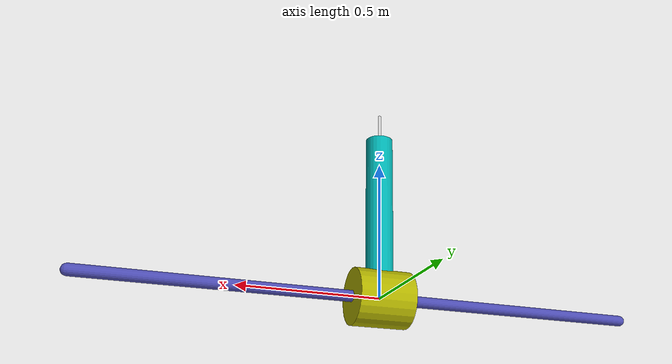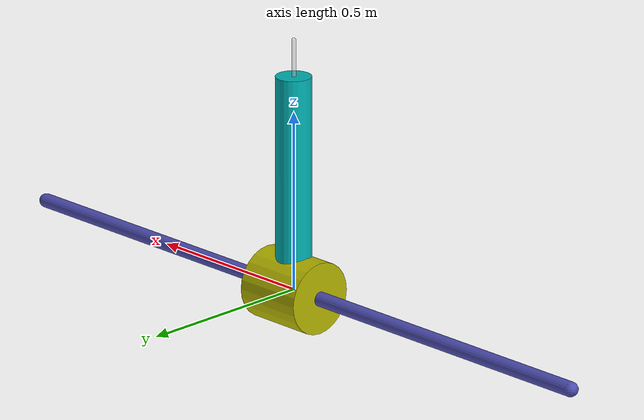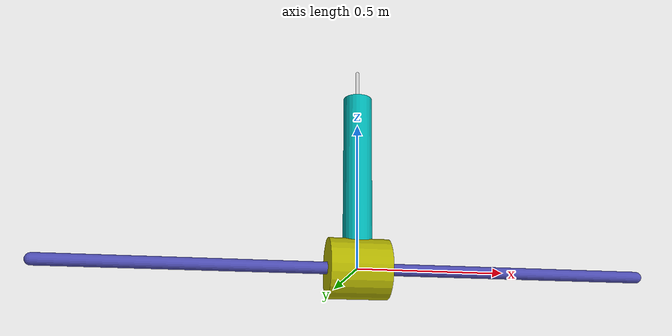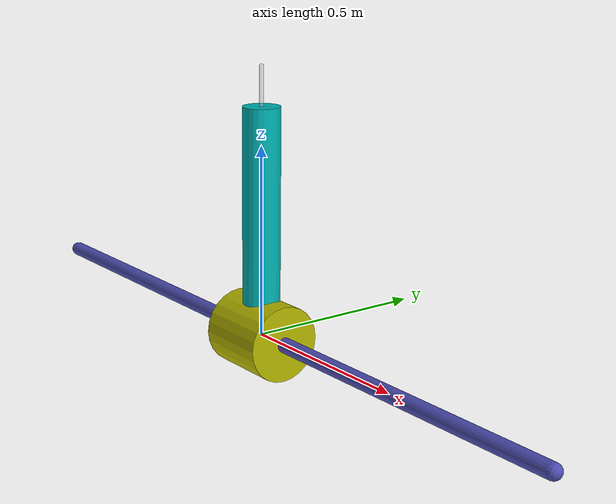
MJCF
<mujoco model="inverted pendulum">
	<compiler inertiafromgeom="true"/>
	<default>
		<joint armature="0" damping="1" limited="true"/>
		<geom contype="0" friction="1 0.1 0.1" rgba="0.7 0.7 0 1"/>
		<tendon/>
		<motor ctrlrange="-3 3"/>
	</default>
	<option gravity="0 0 -9.81" integrator="RK4" timestep="0.02"/>
	<size nstack="3000"/>
	<worldbody>
		<!--geom name="ground" type="plane" pos="0 0 0" /-->
		<geom name="theta_zero_line" type="capsule" fromto="0 0 0 0 0 0.7" size="0.006" rgba="0.8 0.8 0.8 0.5" contype="0" conaffinity="0" mass="0" />
		<geom name="rail" pos="0 0 0" quat="0.707 0 0.707 0" rgba="0.3 0.3 0.7 1" size="0.02 1" type="capsule"/>
		<body name="cart" pos="0 0 0">
			<joint axis="1 0 0" limited="true" name="slider" pos="0 0 0" range="-1 1" type="slide"/>
			<geom name="cart" pos="0 0 0" quat="0.707 0 0.707 0" size="0.1 0.1" type="cylinder"/>
			<body name="pole" pos="0 0 0">
				<joint axis="0 1 0" name="hinge" pos="0 0 0" range="-90 90" type="hinge"/>
				<geom fromto="0 0 0 0.001 0 0.6" name="cpole" rgba="0 0.7 0.7 1" size="0.049 0.3" type="cylinder"/>
			</body>
		</body>
	</worldbody>
	<actuator>
        <!-- linear motor force -->
		<motor ctrllimited="true" ctrlrange="-5 5" gear="100" joint="slider" name="slide"/>
        <!-- rotational motor torque -->
        <motor ctrllimited="true" ctrlrange="-3 3" gear="10" joint="hinge" name="hinge_torque"/>
	</actuator>
</mujoco>
